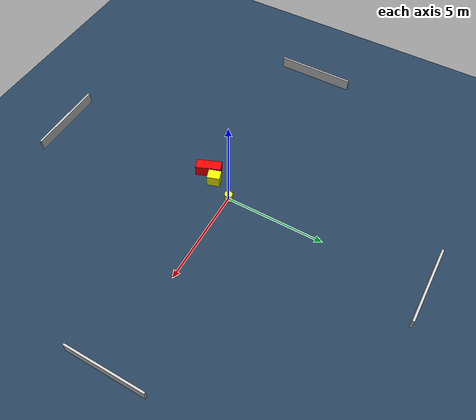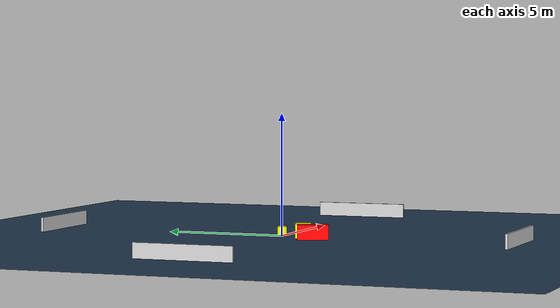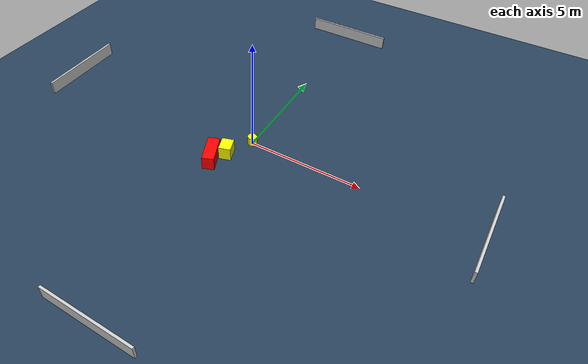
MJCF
<?xml version="1.0" ?>
<mujoco model="generated_environment">
  <option timestep="0.01" integrator="RK4" cone="elliptic"/>
  <default>
    <geom density="1"/>
  </default>
  <asset>
    <texture builtin="gradient" height="3072" name="skybox" rgb1="0.3 0.5 0.7" rgb2="0 0 0" type="skybox" width="512"/>
    <texture builtin="checker" height="300" name="groundplane" rgb1="0.2 0.3 0.4" rgb2="0.1 0.2 0.3" type="2d" width="300"/>
    <material name="groundplane" reflectance="0.2" texrepeat="5 5" texture="groundplane"/>
  </asset>
  <worldbody>
    <light dir="0 0 -1" directional="true" pos="0 0 1.5"/>
    <geom condim="3" friction="0.5 0.005 0.001" material="groundplane" name="floor" pos="0 0 0" size="0 0 0.05" type="plane"/>
    <body name="walls">
      <geom name="wall_1" condim="4" pos="-10.0 0.0 0.3" rgba="0.800000011920929 0.800000011920929 0.800000011920929 1.0" size="0.05 2.0 0.3" type="box"/>
      <geom name="wall_2" condim="4" pos="10.0 0.0 0.3" rgba="0.800000011920929 0.800000011920929 0.800000011920929 1.0" size="0.05 2.0 0.3" type="box"/>
      <geom name="wall_3" condim="4" pos="0.0 -10.0 0.3" rgba="0.800000011920929 0.800000011920929 0.800000011920929 1.0" size="2.0 0.05 0.3" type="box"/>
      <geom name="wall_4" condim="4" pos="0.0 10.0 0.3" rgba="0.800000011920929 0.800000011920929 0.800000011920929 1.0" size="2.0 0.05 0.3" type="box"/>
    </body>
    <body name="robot">
      <joint name="joint_x" type="slide" pos="0 0 0" axis="1 0 0"/>
      <joint name="joint_y" type="slide" pos="0 0 0" axis="0 1 0"/>
      <geom name="robot" type="cylinder" pos="0.0 0.0 0.2" size="0.2 0.2 0.0" mass="5.0" friction="1.0 0.005 0.0001" condim="4" rgba="1.0 1.0 0.0 1.0"/>
    </body>
    <body name="obstacle_1_movable">
      <geom name="obstacle_1_movable" condim="4" pos="-0.5717839346948475 -1.1533173538836792 0.3" euler="0 0 17.73700777156776" friction="0.0 0.005 0.001" rgba="1.0 1.0 0.0 1.0" size="0.2592774395778782 0.3191897079542226 0.3" type="box" mass="0.1"/>
      <joint type="free"/>
    </body>
    <body name="obstacle_2_static">
      <geom name="obstacle_2_static" condim="4" pos="-0.9711971844173068 -1.7044430734388258 0.3" euler="0 0 292.3621243159369" friction="0.0 0.005 0.001" rgba="1.0 0.0 0.0 1.0" size="0.6337859621098851 0.2584342195327966 0.3" type="box"/>
    </body>
  </worldbody>
  <actuator>
    <motor name="actuator_x" joint="joint_x" gear="1" ctrlrange="-1 1"/>
    <motor name="actuator_y" joint="joint_y" gear="1" ctrlrange="-1 1"/>
  </actuator>
</mujoco>
